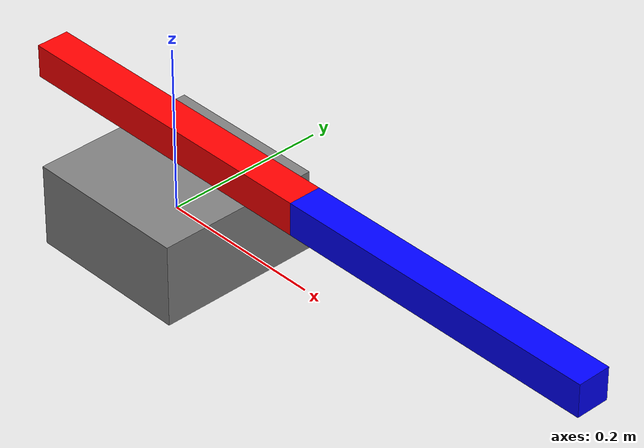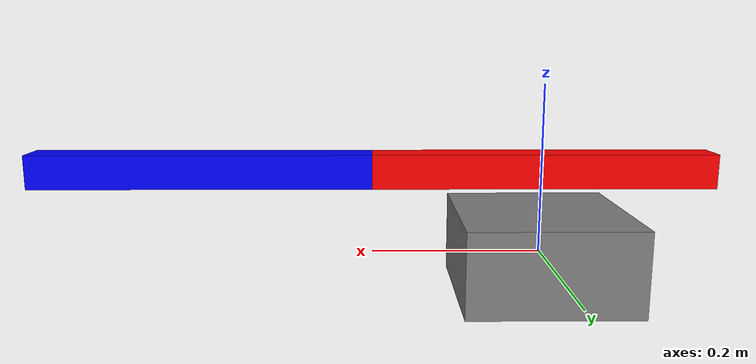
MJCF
<mujoco model="belt_driven_arm">
    <compiler angle="radian"/>
    <option timestep="0.001" gravity="0 0 -9.81"/>

    <worldbody>
        <body name="base" pos="0 0 0">
            <geom type="box" size="0.1 0.1 0.05" rgba="0.5 0.5 0.5 1"/>
            <body name="link1" pos="0 0 0.1">
                <joint name="joint1" type="hinge" axis="0 0 1"/>
                <geom type="box" size="0.2 0.02 0.02" rgba="1 0 0 1"/>
                <body name="link2" pos="0.4 0 0">
                    <joint name="joint2" type="slide" axis="1 0 0"/>
                    <geom type="box" size="0.2 0.02 0.02" rgba="0 0 1 1"/>
                </body>
            </body>
        </body>
    </worldbody>

    <actuator>
        <motor name="motor1" joint="joint1" gear="100"/>
        <motor name="motor2" joint="joint2" gear="100"/>
    </actuator>
</mujoco>
